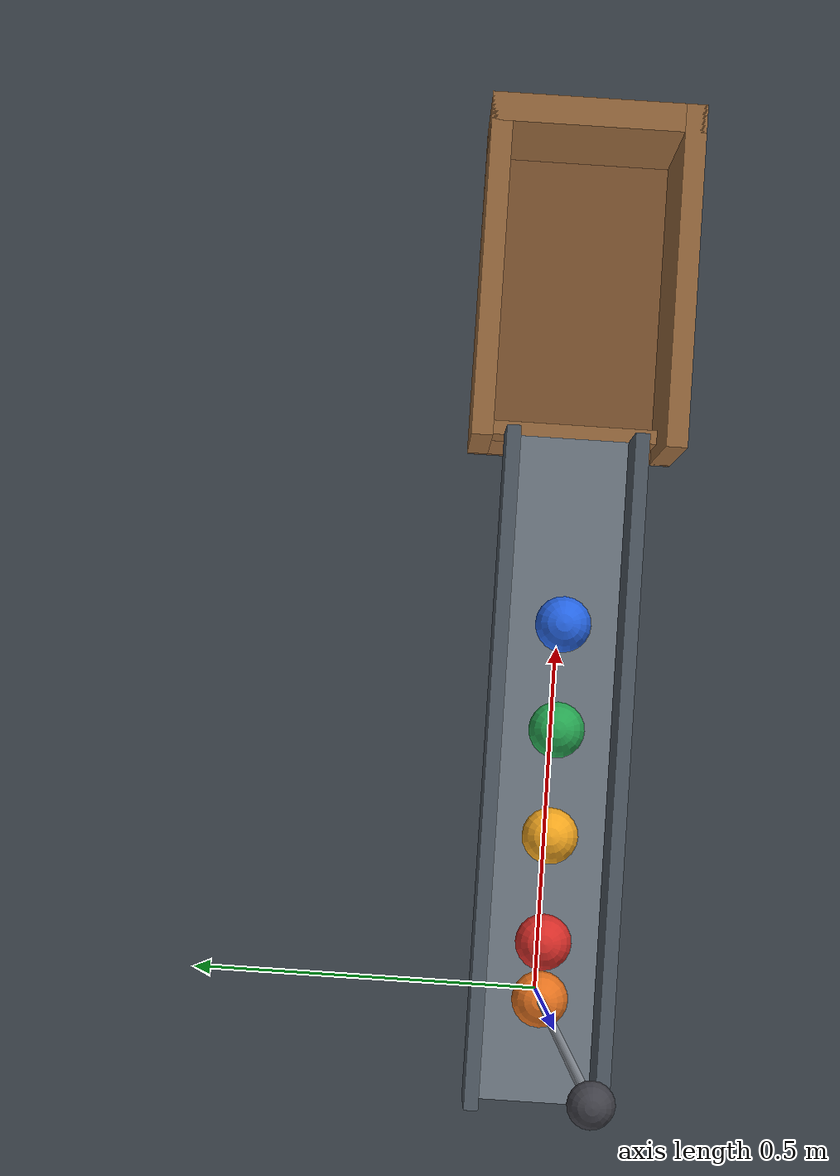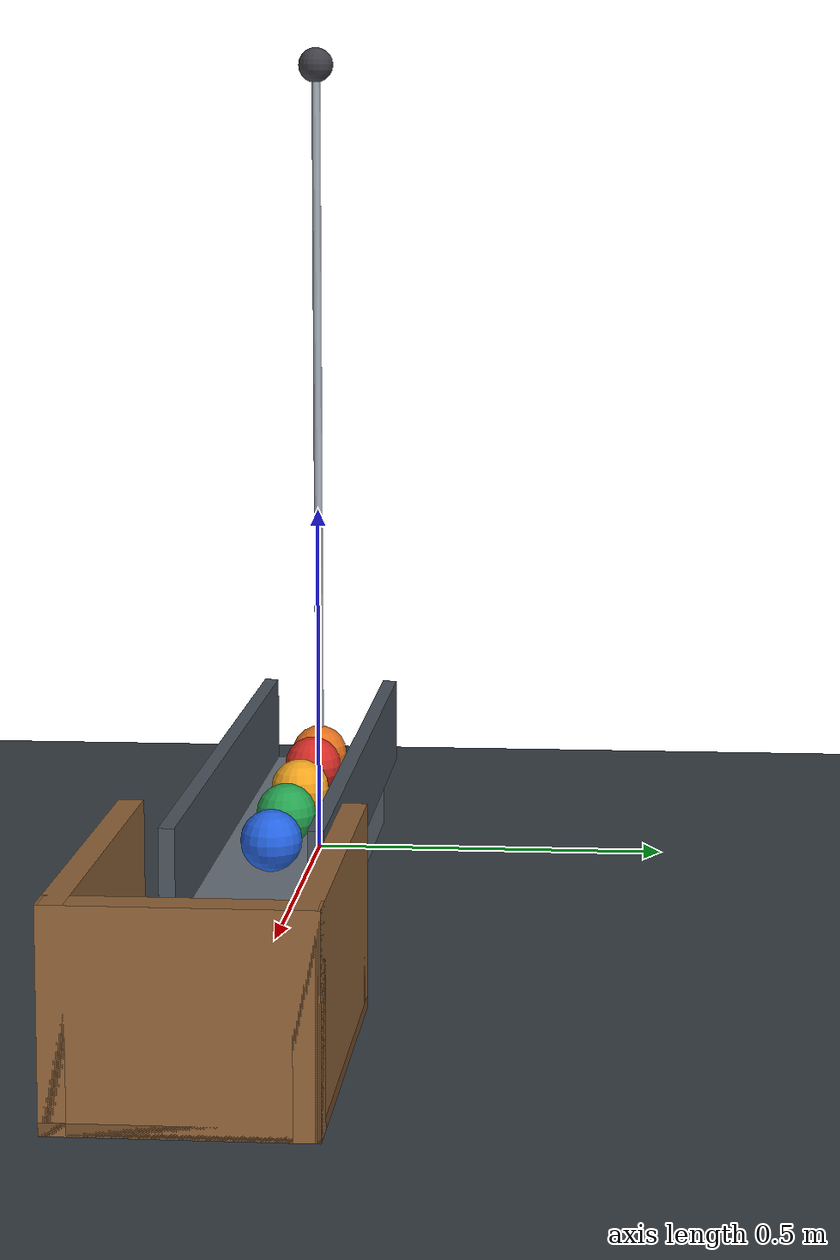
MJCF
<mujoco model="pendulum_four_ball_transfer">
  <compiler angle="radian" inertiafromgeom="true"/>
  <option timestep="0.002" gravity="0 0 -9.81" integrator="implicitfast" cone="elliptic" iterations="80" tolerance="1e-10"/>

  <visual>
    <headlight ambient="0.35 0.35 0.35" diffuse="0.7 0.7 0.7" specular="0.2 0.2 0.2"/>
  </visual>

  <worldbody>
    <light name="overhead" pos="0 -2 4" dir="0 0 -1"/>
    <camera name="overview" pos="0.5 -3 1.8" xyaxes="1 0 0 0 0.45 0.893"/>

    <geom name="floor" type="plane" pos="0 0 0" size="3 2 0.1" friction="0.8 0.005 0.001" priority="2" solref="0.008 1" rgba="0.22 0.25 0.28 1"/>
    <geom name="pivot_marker" type="sphere" pos="0 0 1.14" size="0.025" contype="0" conaffinity="0" rgba="0.25 0.25 0.28 1"/>

    <!-- The bob is 1 m below its hinge. At 60 degrees its release height
         is 1*(1-cos(60 degrees)) = 0.5 m above its lowest point. -->
    <body name="pendulum" pos="0 0 1.14">
      <joint name="pendulum_hinge" type="hinge" axis="0 1 0" limited="false" damping="0.0005"/>
      <geom name="pendulum_rod" type="capsule" fromto="0 0 0 0 0 -0.96" size="0.006" mass="0.0005" contype="0" conaffinity="0" rgba="0.65 0.68 0.72 1"/>
      <geom name="pendulum_bob" type="sphere" pos="0 0 -1" size="0.04" mass="0.2" condim="6" friction="0.03 0.001 0.001" solref="-100000 -20" solimp="0.98 0.995 0.001" rgba="0.9 0.45 0.12 1"/>
    </body>

    <!-- Level rail: top surface z=0.10, with lateral guides. -->
    <body name="rail" pos="0 0 0">
      <geom name="rail_bed" type="box" pos="0.325 0 0.05" size="0.475 0.08 0.05" priority="1" condim="6" friction="0.03 0.001 0.001" solref="0.008 1" solimp="0.95 0.99 0.001" rgba="0.42 0.46 0.50 1"/>
      <geom name="rail_left_guide" type="box" pos="0.325 0.09 0.16" size="0.475 0.01 0.06" priority="1" condim="6" friction="0.03 0.001 0.001" solref="0.008 1" solimp="0.95 0.99 0.001" rgba="0.3 0.34 0.38 1"/>
      <geom name="rail_right_guide" type="box" pos="0.325 -0.09 0.16" size="0.475 0.01 0.06" priority="1" condim="6" friction="0.03 0.001 0.001" solref="0.008 1" solimp="0.95 0.99 0.001" rgba="0.3 0.34 0.38 1"/>
    </body>

    <!-- Four equal balls, initially at rest, with 0.15 m center spacing.
         Their mutually contacting surfaces use lightly damped contacts. -->
    <body name="ball1" pos="0.08 0 0.14">
      <freejoint name="ball1_free"/>
      <geom name="ball1_sphere" type="sphere" size="0.04" mass="0.2" condim="6" friction="0.03 0.001 0.001" solref="-100000 -20" solimp="0.98 0.995 0.001" rgba="0.85 0.18 0.16 1"/>
    </body>

    <body name="ball2" pos="0.23 0 0.14">
      <freejoint name="ball2_free"/>
      <geom name="ball2_sphere" type="sphere" size="0.04" mass="0.2" condim="6" friction="0.03 0.001 0.001" solref="-100000 -20" solimp="0.98 0.995 0.001" rgba="0.95 0.65 0.12 1"/>
    </body>

    <body name="ball3" pos="0.38 0 0.14">
      <freejoint name="ball3_free"/>
      <geom name="ball3_sphere" type="sphere" size="0.04" mass="0.2" condim="6" friction="0.03 0.001 0.001" solref="-100000 -20" solimp="0.98 0.995 0.001" rgba="0.15 0.65 0.32 1"/>
    </body>

    <body name="ball4" pos="0.53 0 0.14">
      <freejoint name="ball4_free"/>
      <geom name="ball4_sphere" type="sphere" size="0.04" mass="0.2" condim="6" friction="0.03 0.001 0.001" solref="-100000 -20" solimp="0.98 0.995 0.001" rgba="0.15 0.4 0.9 1"/>
    </body>

    <!-- The entrance lip is flush with the rail. Beyond it, the ball
         drops into a lower, high-friction pocket with damped walls. -->
    <body name="box" pos="1.02 0 0">
      <geom name="box_bottom" type="box" pos="0 0 0.0075" size="0.24 0.15 0.0075" priority="2" condim="6" friction="1 0.005 0.02" solref="0.008 1" solimp="0.95 0.99 0.001" rgba="0.48 0.32 0.18 1"/>
      <geom name="box_front_lip" type="box" pos="-0.21 0 0.05" size="0.01 0.15 0.05" priority="2" condim="6" friction="1 0.005 0.02" solref="0.008 1" solimp="0.95 0.99 0.001" rgba="0.58 0.4 0.23 1"/>
      <geom name="box_back_wall" type="box" pos="0.22 0 0.125" size="0.02 0.15 0.125" priority="2" condim="6" friction="1 0.005 0.02" solref="0.008 1" solimp="0.95 0.99 0.001" rgba="0.58 0.4 0.23 1"/>
      <geom name="box_left_wall" type="box" pos="0 0.135 0.125" size="0.24 0.015 0.125" priority="2" condim="6" friction="1 0.005 0.02" solref="0.008 1" solimp="0.95 0.99 0.001" rgba="0.58 0.4 0.23 1"/>
      <geom name="box_right_wall" type="box" pos="0 -0.135 0.125" size="0.24 0.015 0.125" priority="2" condim="6" friction="1 0.005 0.02" solref="0.008 1" solimp="0.95 0.99 0.001" rgba="0.58 0.4 0.23 1"/>
    </body>
  </worldbody>

  <keyframe>
    <key name="start" qpos="1.047197551196598 0.08 0 0.14 1 0 0 0 0.23 0 0.14 1 0 0 0 0.38 0 0.14 1 0 0 0 0.53 0 0.14 1 0 0 0"/>
  </keyframe>
</mujoco>
